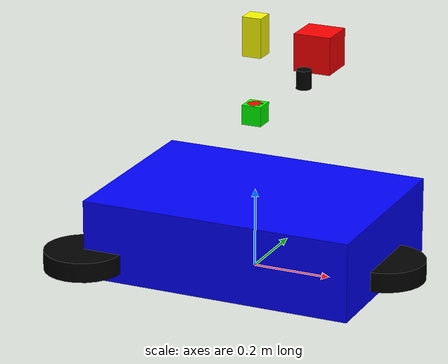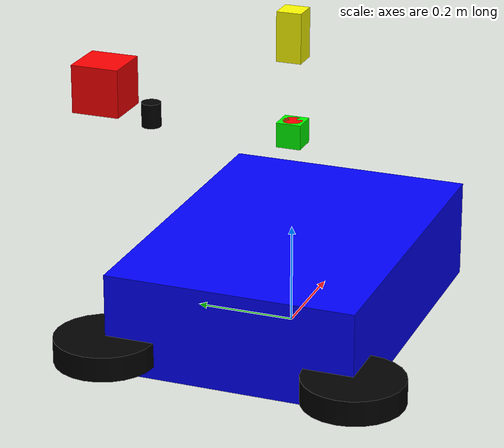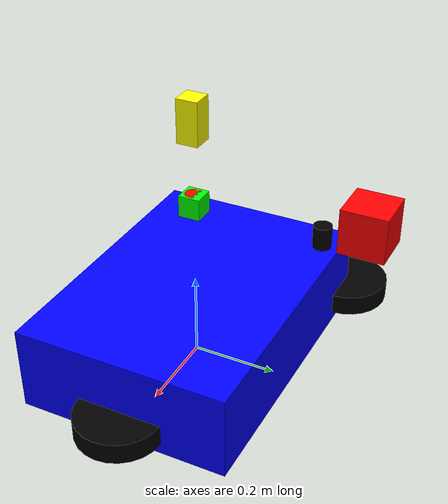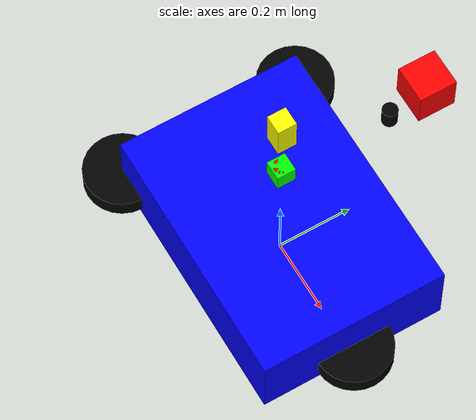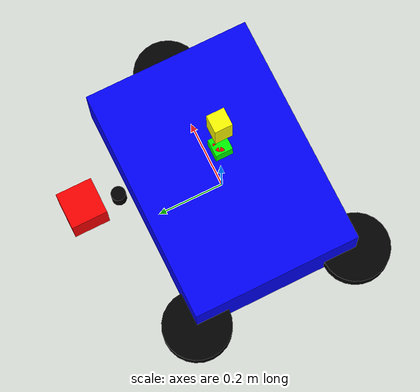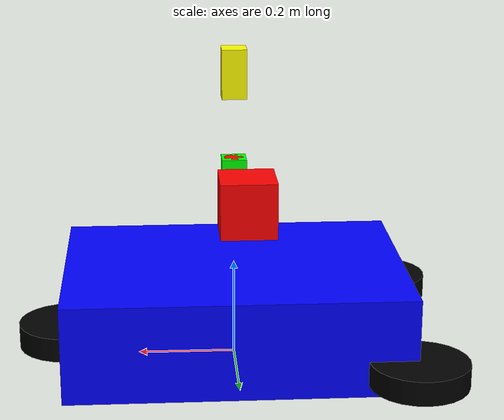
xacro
<!-- my_robot.urdf.xacro -->
<robot name="my_robot" xmlns:xacro="http://www.ros.org/wiki/xacro">

    <!-- Define materials -->
    <material name="blue">
        <color rgba="0 0 1 1"/>
    </material>
    <material name="black">
        <color rgba="0 0 0 1"/>
    </material>
    <material name="red">
        <color rgba="1 0 0 1"/>
    </material>
    <material name="green">
        <color rgba="0 1 0 1"/>
    </material>
    <material name="yellow">
        <color rgba="1 1 0 1"/>
    </material>

    <!-- Dummy link to avoid inertia warning -->
    <link name="dummy_link"/>
    <joint name="fixed_joint" type="fixed">
        <parent link="dummy_link"/>
        <child link="base_link"/>
    </joint>

    <!-- Properties -->
    <xacro:property name="wheel_radius" value="0.1"/>
    <xacro:property name="wheel_width" value="0.05"/>
    <xacro:property name="base_width" value="0.5"/>
    <xacro:property name="base_length" value="0.7"/>
    <xacro:property name="base_height" value="0.2"/>

	<!-- Base Link -->
	<link name="base_link">
		<inertial>
			<mass value="5.0"/>
			<origin xyz="0 0 0"/>
			<inertia ixx="0.1" ixy="0.0" ixz="0.0" iyy="0.1" iyz="0.0" izz="0.1"/>
		</inertial>
		<visual>
			<origin xyz="0 0 ${base_height / 2}" rpy="0 0 0"/>
			<geometry>
				<box size="${base_length} ${base_width} ${base_height}"/>
			</geometry>
			<material name="blue"/>
		</visual>
		<collision>
			<origin xyz="0 0 ${base_height / 2}" rpy="0 0 0"/>
			<geometry>
				<box size="${base_length} ${base_width} ${base_height}"/>
			</geometry>
		</collision>
	</link>

    <!-- Wheels -->
    <xacro:macro name="wheel" params="name x y z">
        <link name="${name}">
            <inertial>
                <mass value="1.0"/>
                <origin xyz="0 0 0"/>
                <inertia ixx="0.01" ixy="0.0" ixz="0.0" iyy="0.01" iyz="0.0" izz="0.01"/>
            </inertial>
            <visual>
                <origin xyz="0 0 0" rpy="0 0 0"/>
                <geometry>
                    <cylinder length="${wheel_width}" radius="${wheel_radius}"/>
                </geometry>
                <material name="black"/>
            </visual>
            <collision>
                <origin xyz="0 0 0" rpy="0 0 0"/>
                <geometry>
                    <cylinder length="${wheel_width}" radius="${wheel_radius}"/>
                </geometry>
            </collision>
        </link>
        <joint name="${name}_joint" type="continuous">
            <parent link="base_link"/>
            <child link="${name}"/>
            <origin xyz="${x} ${y} ${z}" rpy="0 0 0"/>
            <axis xyz="0 1 0"/>
            <dynamics damping="0.5" friction="0.5"/>
            <limit effort="10" velocity="10"/>
        </joint>
    </xacro:macro>

    <!-- Add Wheels -->
    <xacro:wheel name="front_wheel" x="0.35" y="0" z="0.05"/>
    <xacro:wheel name="left_wheel" x="-0.35" y="0.25" z="0.05"/>
    <xacro:wheel name="right_wheel" x="-0.35" y="-0.25" z="0.05"/>

    <!-- Sensors -->
    <!-- Proximity Sensor -->
    <link name="proximity_sensor">
        <visual>
            <origin xyz="0 0 0.15" rpy="0 0 0"/>
            <geometry>
                <cylinder radius="0.02" length="0.05"/>
            </geometry>
            <material name="red"/>
        </visual>
    </link>
    <joint name="proximity_sensor_joint" type="fixed">
        <parent link="base_link"/>
        <child link="proximity_sensor"/>
        <origin xyz="0 0 0.25" rpy="0 0 0"/>
    </joint>

    <!-- Gyroscope -->
    <link name="gyroscope">
        <visual>
            <origin xyz="0 0 0.1" rpy="0 0 0"/>
            <geometry>
                <box size="0.05 0.05 0.05"/>
            </geometry>
            <material name="green"/>
        </visual>
    </link>
    <joint name="gyroscope_joint" type="fixed">
        <parent link="base_link"/>
        <child link="gyroscope"/>
        <origin xyz="0 0 0.3" rpy="0 0 0"/>
    </joint>

    <!-- RGB Camera -->
    <link name="rgb_camera">
        <visual>
            <origin xyz="0 0 0.2" rpy="0 0 0"/>
            <geometry>
                <box size="0.05 0.05 0.1"/>
            </geometry>
            <material name="yellow"/>
        </visual>
    </link>
    <joint name="rgb_camera_joint" type="fixed">
        <parent link="base_link"/>
        <child link="rgb_camera"/>
        <origin xyz="0 0 0.4" rpy="0 0 0"/>
    </joint>

    <!-- Additional Sensors (if required) -->
    <!-- Infrared Sensor -->
    <link name="infrared_sensor">
        <visual>
            <origin xyz="0 0 0.15" rpy="0 0 0"/>
            <geometry>
                <cylinder radius="0.02" length="0.05"/>
            </geometry>
            <material name="black"/>
        </visual>
    </link>
    <joint name="infrared_sensor_joint" type="fixed">
        <parent link="base_link"/>
        <child link="infrared_sensor"/>
        <origin xyz="0 0.3 0.25" rpy="0 0 0"/>
    </joint>

    <!-- LIDAR Sensor -->
    <link name="lidar_sensor">
        <visual>
            <origin xyz="0 0 0.1" rpy="0 0 0"/>
            <geometry>
                <box size="0.1 0.1 0.1"/>
            </geometry>
            <material name="red"/>
        </visual>
    </link>
    <joint name="lidar_sensor_joint" type="fixed">
        <parent link="base_link"/>
        <child link="lidar_sensor"/>
        <origin xyz="0 0.4 0.35" rpy="0 0 0"/>
    </joint>

</robot>
